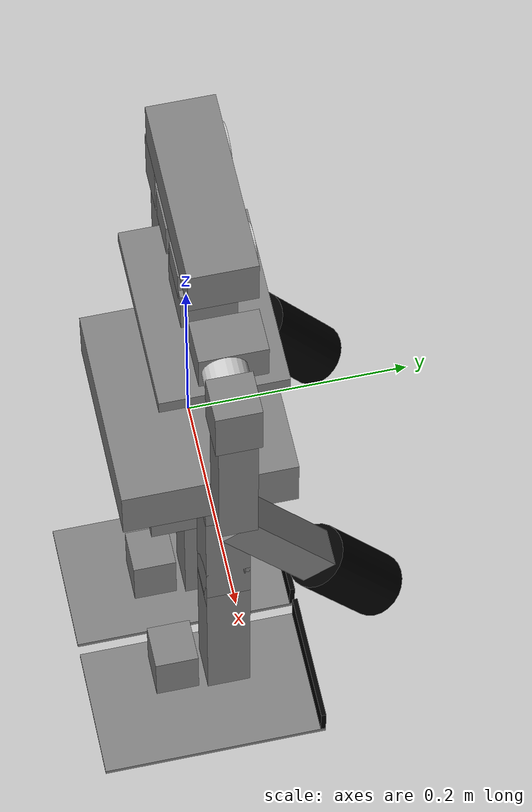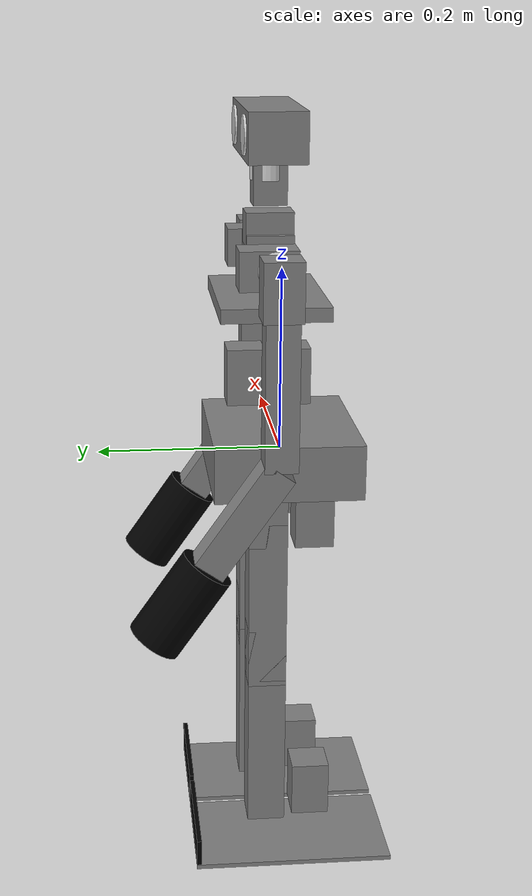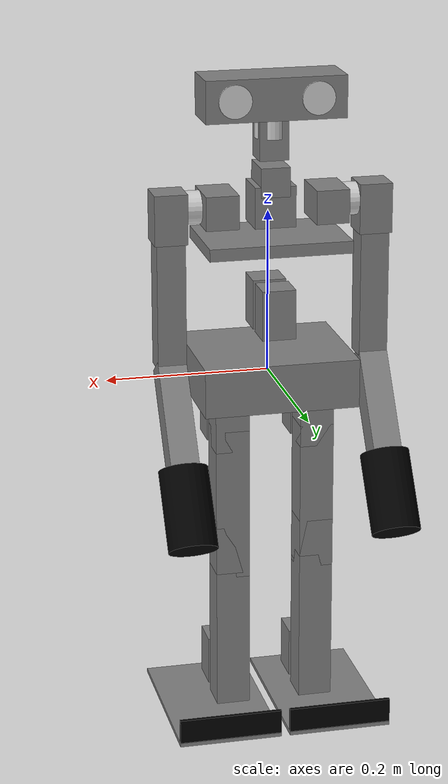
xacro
<?xml version="1.0" ?>
<robot xmlns:xacro="http://ros.org/wiki/xacro" name="tflow">

    <xacro:property name="dynamixel_mx28_x" value="0.0356"/>
    <xacro:property name="dynamixel_mx28_y" value="0.0355"/>
    <xacro:property name="dynamixel_mx28_z" value="0.0506"/>
    <xacro:property name="dynamixel_mx28_weight" value="0.072"/>

    <xacro:property name="dynamixel_mx64_x" value="0.0402"/>
    <xacro:property name="dynamixel_mx64_y" value="0.041"/>
    <xacro:property name="dynamixel_mx64_z" value="0.0611"/>
    <xacro:property name="dynamixel_mx64_weight" value="0.126"/>

    <xacro:property name="dynamixel_mx106_x" value="0.0402"/>
    <xacro:property name="dynamixel_mx106_y" value="0.046"/>
    <xacro:property name="dynamixel_mx106_z" value="0.0651"/>
    <xacro:property name="dynamixel_mx106_weight" value="0.153"/>

    <xacro:property name="kepalakepala_y" value="0.046"/>
    <xacro:property name="kepalakepala_z" value="0.0651"/>
    <xacro:property name="kepalakepala_weight" value="0.153"/>

    <xacro:macro name="kepalakepala" params="roll pitch yaw x y z">
        <visual>
            <geometry>
                <box size="${kepalakepala_x} ${kepalakepala_y} ${kepalakepala_z}"/>
            </geometry>
            <origin rpy="${roll} ${pitch} ${yaw}" xyz="${x} ${y} ${z}"/>
            <material name="silver">
                <color rgba="0.5 0.5 0.5 1"/>
            </material>
        </visual>
        <collision>
          <geometry>
            <box size="${kepalakepala_x} ${kepalakepala_y} ${kepalakepala_z}"/>
          </geometry>
          <origin rpy="${roll} ${pitch} ${yaw}" xyz="${x} ${y} ${z}"/>
        </collision>
        <inertial>
            <mass value="${kepalakepala_weight}"/>
            <inertia ixx="0.0" ixy="0.0" ixz="0.0" iyy="0.0" iyz="0.0" izz="0.0"/>
        </inertial>
    </xacro:macro>

    <xacro:macro name="dynamixelmx28" params="roll pitch yaw x y z">
        <visual>
            <geometry>
                <box size="${dynamixel_mx28_x} ${dynamixel_mx28_y} ${dynamixel_mx28_z}"/>
            </geometry>
            <origin rpy="${roll} ${pitch} ${yaw}" xyz="${x} ${y} ${z}"/>
            <material name="silver">
                <color rgba="0.5 0.5 0.5 1"/>
            </material>
        </visual>
        <collision>
          <geometry>
            <box size="${dynamixel_mx28_x} ${dynamixel_mx28_y} ${dynamixel_mx28_z}"/>
          </geometry>
          <origin rpy="${roll} ${pitch} ${yaw}" xyz="${x} ${y} ${z}"/>
        </collision>
        <inertial>
            <mass value="${dynamixel_mx28_weight}"/>
            <inertia ixx="0.0" ixy="0.0" ixz="0.0" iyy="0.0" iyz="0.0" izz="0.0"/>
        </inertial>
    </xacro:macro>

    <xacro:macro name="dynamixelmx64" params="roll pitch yaw x y z">
        <visual>
            <geometry>
                <box size="${dynamixel_mx64_x} ${dynamixel_mx64_y} ${dynamixel_mx64_z}"/>
            </geometry>
            <origin rpy="${roll} ${pitch} ${yaw}" xyz="${x} ${y} ${z}"/>
            <material name="silver">
                <color rgba="0.5 0.5 0.5 1"/>
            </material>
        </visual>
        <collision>
          <geometry>
            <box size="${dynamixel_mx64_x} ${dynamixel_mx64_y} ${dynamixel_mx64_z}"/>
          </geometry>
          <origin rpy="${roll} ${pitch} ${yaw}" xyz="${x} ${y} ${z}"/>
        </collision>
        <inertial>
            <mass value="${dynamixel_mx64_weight}"/>
            <inertia ixx="0.0" ixy="0.0" ixz="0.0" iyy="0.0" iyz="0.0" izz="0.0"/>
        </inertial>
    </xacro:macro>

    <xacro:macro name="dynamixelmx106" params="roll pitch yaw x y z">
        <visual>
            <geometry>
                <box size="${dynamixel_mx106_x} ${dynamixel_mx106_y} ${dynamixel_mx106_z}"/>
            </geometry>
            <origin rpy="${roll} ${pitch} ${yaw}" xyz="${x} ${y} ${z}"/>
            <material name="silver">
                <color rgba="0.3 0.3 0.3 1"/>
            </material>
        </visual>
        <collision>
          <geometry>
            <box size="${dynamixel_mx106_x} ${dynamixel_mx106_y} ${dynamixel_mx106_z}"/>
          </geometry>
          <origin rpy="${roll} ${pitch} ${yaw}" xyz="${x} ${y} ${z}"/>
        </collision>
        <inertial>
            <mass value="${dynamixel_mx106_weight}"/>
            <inertia ixx="0.0" ixy="0.0" ixz="0.0" iyy="0.0" iyz="0.0" izz="0.0"/>
        </inertial>
    </xacro:macro>

    <xacro:macro name="link_cylinder" params="le r roll pitch yaw x y z">
        <visual>
            <geometry>
                <cylinder length="${le}" radius="${r}"/>
            </geometry>
            <origin rpy="${roll} ${pitch} ${yaw}" xyz="${x} ${y} ${z}"/>
            <material name="white">
                <color rgba="0.8 0.8 0.8 1"/>
            </material>
        </visual>
        <collision>
          <geometry>
            <cylinder length="${le}" radius="${r}"/>
          </geometry>
          <origin rpy="${roll} ${pitch} ${yaw}" xyz="${x} ${y} ${z}"/>
        </collision>
        <inertial>
            <mass value="${le*r}"/>
            <inertia ixx="0.0" ixy="0.0" ixz="0.0" iyy="0.0" iyz="0.0" izz="0.0"/>
        </inertial>
    </xacro:macro>

    <xacro:macro name="link_box" params="bx by bz roll pitch yaw x y z">
        <visual>
            <geometry>
                <box size="${bx} ${by} ${bz}"/>
            </geometry>
            <origin rpy="${roll} ${pitch} ${yaw}" xyz="${x} ${y} ${z}"/>
            <material name="silver">
                <color rgba="0.5 0.5 0.5 1"/>
            </material>
        </visual>
        <collision>
          <geometry>
            <box size="${bx} ${by} ${bz}"/>
          </geometry>
          <origin rpy="${roll} ${pitch} ${yaw}" xyz="${x} ${y} ${z}"/>
        </collision>
        <inertial>
            <mass value="${bx*by*bz}"/>
            <inertia ixx="0.0" ixy="0.0" ixz="0.0" iyy="0.0" iyz="0.0" izz="0.0"/>
        </inertial>
    </xacro:macro>

     <xacro:macro name="link_box2" params="bx by bz roll pitch yaw x y z">
        <visual>
            <geometry>
                <box size="${bx} ${by} ${bz}"/>
            </geometry>
            <origin rpy="${roll} ${pitch} ${yaw}" xyz="${x} ${y} ${z}"/>
            <material name="white">
                <color rgba="0.8 0.8 0.8 1"/>
            </material>
        </visual>
        <collision>
          <geometry>
            <box size="${bx} ${by} ${bz}"/>
          </geometry>
          <origin rpy="${roll} ${pitch} ${yaw}" xyz="${x} ${y} ${z}"/>
        </collision>
        <inertial>
            <mass value="${bx*by*bz}"/>
            <inertia ixx="0.0" ixy="0.0" ixz="0.0" iyy="0.0" iyz="0.0" izz="0.0"/>
        </inertial>
    </xacro:macro>

    <xacro:macro name="telapak_tangan" params="le r roll pitch yaw x y z">
        <visual>
            <geometry>
                <cylinder length="${le}" radius="${r}"/>
            </geometry>
            <origin rpy="${roll} ${pitch} ${yaw}" xyz="${x} ${y} ${z}"/>
            <material name="black">
                <color rgba="0 0 0 1"/>
            </material>
        </visual>
        <collision>
          <geometry>
            <cylinder length="${le}" radius="${r}"/>
          </geometry>
          <origin rpy="${roll} ${pitch} ${yaw}" xyz="${x} ${y} ${z}"/>
        </collision>
        <inertial>
            <mass value="${le*r}"/>
            <inertia ixx="0.0" ixy="0.0" ixz="0.0" iyy="0.0" iyz="0.0" izz="0.0"/>
        </inertial>
    </xacro:macro>

    <link name="base_link">
        <visual>
            <geometry>
                <box size="0.19 0.16 0.06"/>
            </geometry>
            <origin rpy="0 0 0" xyz="0 0 0"/>
            <material name="silver">
                <color rgba="0.5 0.5 0.5 1"/>
            </material>
        </visual>
        <collision>
            <geometry>
                <box size="0.19 0.16 0.06"/>
            </geometry>
            <origin rpy="0 0 0" xyz="0 0 0"/>
            <material name="silver">
                <color rgba="0.5 0.5 0.5 1"/>
            </material>
        </collision>
        <inertial>
            <mass value="0.01"/>
            <inertia ixx="0.0" ixy="0.0" ixz="0.0" iyy="0.0" iyz="0.0" izz="0.0"/>
        </inertial>
    </link>

    <!-- PERUT -->
    <link name="servo_perut_pitch">
        <xacro:dynamixelmx64 roll="0.0" pitch="0.0" yaw = "1.57" x="0" y="0" z="0.025"/>
    </link>

    <link name="servo_perut_roll">
        <xacro:dynamixelmx64 roll="0.0" pitch="0.0" yaw = "1.57" x="0" y="0" z="0.025"/>
    </link>

    <link name="alas_badan_atas">
        <xacro:link_box bx="0.174" by="0.115" bz="0.015" roll="0.0" pitch="0.0" yaw ="0" x="0" y="-0.025" z="0.0725"/>
    </link>

    <link name="badan_atas">
        <xacro:link_box bx="0.05" by="0.05" bz="0.05" roll="0.0" pitch="0.0" yaw ="0" x="0" y="0.0" z="0.0"/>
    </link>

    <!-- TANGAN -->

    <link name="servo_lengan_kanan_roll">
        <xacro:dynamixelmx64 roll="1.57" pitch="0.0" yaw = "0.0" x="0" y="0.008" z="0.0"/>
    </link>

    <link name="servo_lengan_kiri_roll">
        <xacro:dynamixelmx64 roll="1.57" pitch="0.0" yaw = "0.0" x="0" y="0.008" z="0.0"/>
    </link>

    <link name="link_servo_lengan_kanan_roll">
        <xacro:link_cylinder le="0.04" r="0.02" roll="0.0" pitch="1.57" yaw ="0.0" x="0.02" y="0" z="0.00"/>
    </link>

    <link name="link_servo_lengan_kiri_roll">
        <xacro:link_cylinder le="0.04" r="0.02" roll="0.0" pitch="-1.57" yaw ="0.0" x="-0.02" y="0" z="0.00"/>
    </link>

    <link name="servo_lengan_kanan_pitch">
        <xacro:dynamixelmx64 roll="0.0" pitch="0.0" yaw = "0.0" x="0" y="0" z="-0.01"/>
    </link>

    <link name="servo_lengan_kiri_pitch">
        <xacro:dynamixelmx64 roll="0.0" pitch="0.0" yaw = "0.0" x="0" y="0" z="-0.01"/>
    </link>

    <link name="tangan_kanan_1">
        <xacro:link_box bx="0.035" by="0.035" bz="0.18" roll="0.0" pitch="0.0" yaw ="0" x="0" y="0.0" z="-0.09"/>
    </link>

    <link name="tangan_kiri_1">
        <xacro:link_box bx="0.035" by="0.035" bz="0.18" roll="0.0" pitch="0.0" yaw ="0" x="0" y="0.0" z="-0.09"/>
    </link>

    <link name="tangan_kanan_2">
        <xacro:link_box bx="0.035" by="0.035" bz="0.13" roll="0.0" pitch="0.0" yaw ="0" x="0" y="0.0" z="-0.065"/>
    </link>

    <link name="tangan_kiri_2">
        <xacro:link_box bx="0.035" by="0.035" bz="0.13" roll="0.0" pitch="0.0" yaw ="0" x="0" y="0.0" z="-0.065"/>
    </link>

    <link name="telapak_tangan_kanan">
        <xacro:telapak_tangan le="0.10" r="0.03" roll="0.0" pitch="0" yaw ="0" x="0" y="0" z="0.0"/>
    </link>

    <link name="telapak_tangan_kiri">
        <xacro:telapak_tangan le="0.10" r="0.03" roll="0.0" pitch="0" yaw ="0" x="0" y="0" z="0.0"/>
    </link>

    <!-- KEPALA -->
    <link name="servo_kepala_yaw">
        <xacro:dynamixelmx28 roll="1.57" pitch="1.57" yaw = "0.0" x="0" y="0.00" z="0.0"/>
    </link>

    <link name="servo_kepala_roll">
        <xacro:dynamixelmx28 roll="0.0" pitch="0.0" yaw = "1.57" x="0" y="0.00" z="0.0"/>
    </link>

    <link name="link_kepala">
        <xacro:link_cylinder le="0.04" r="0.02" roll="0.0" pitch="0.0" yaw ="0.0" x="0.00" y="0" z="0.02"/>
    </link>

    <link name="kepala">
        <xacro:link_box bx="0.17" by="0.06" bz="0.051" roll="0.0" pitch="0.0" yaw ="0" x="0" y="0.0" z="0.0"/>
    </link>

    <link name="kamera_kanan">
        <xacro:link_cylinder le="0.045" r="0.02" roll="1.57" pitch="0.0" yaw ="0.0" x="0.00" y="0.01" z="0.0"/>
    </link>

    <link name="kamera_kiri">
        <xacro:link_cylinder le="0.045" r="0.02" roll="1.57" pitch="0.0" yaw ="0.0" x="0.00" y="0.01" z="0.0"/>
    </link>

    <joint name="1.engkle_kanan_pitch" type="revolute">
        <parent link="servo_engkle_pitch_kanan"/>
        <child link="telapak_kaki_kanan"/>
        <origin xyz="0 0.025 0"/>
        <axis xyz="0 -1 0" />
        <limit effort="300" velocity="0.1" lower="-1.54" upper="1.54"/>
    </joint>

    <joint name="2.engkle_kiri_pitch" type="revolute">
        <parent link="servo_engkle_pitch_kiri"/>
        <child link="telapak_kaki_kiri"/>
        <origin xyz="0 0.025 0"/>
        <axis xyz="0 -1 0" />
        <limit effort="300" velocity="0.1" lower="-1.54" upper="1.54"/>
    </joint>

    <joint name="3.engkle_kanan_roll" type="revolute">
        <parent link="link_betis_kanan"/>
        <child link="servo_engkle_roll_kanan"/>
        <origin xyz="0 0.0 -0.15"/>
        <axis xyz="-1 0 0" />
        <limit effort="300" velocity="0.1" lower="-1.57" upper="1.57"/>
    </joint>

    <joint name="4.engkle_kiri_roll" type="revolute">
        <parent link="link_betis_kiri"/>
        <child link="servo_engkle_roll_kiri"/>
        <origin xyz="0 0.0 -0.15"/>
        <axis xyz="1 0 0" />
        <limit effort="300" velocity="0.1" lower="-1.57" upper="1.57"/>
    </joint>

    <joint name="5.lutut_kanan_roll" type="revolute">
        <parent link="servo_lutut_kanan"/>
        <child link="link_betis_kanan"/>
        <origin xyz="0 0.0 -0.022"/>
        <axis xyz="1 0 0" />
        <limit effort="300" velocity="0.1" lower="-3.14" upper="3.14"/>
    </joint>

    <joint name="6.lutut_kiri_roll" type="revolute">
        <parent link="servo_lutut_kiri"/>
        <child link="link_betis_kiri"/>
        <origin xyz="0 0.0 -0.022"/>
        <axis xyz="-1 0 0" />
        <limit effort="300" velocity="0.1" lower="-3.14" upper="3.14"/>
    </joint>

    <joint name="7.hip_kanan_roll" type="revolute">
        <parent link="servo_hip_roll_kanan"/>
        <child link="link_paha_kanan"/>
        <origin xyz="0 0.0 -0.01"/>
        <axis xyz="1 0 0" />
        <limit effort="300" velocity="0.1" lower="-1.57" upper="1.57"/>
    </joint>

    <joint name="8.hip_kiri_roll" type="revolute">
        <parent link="servo_hip_roll_kiri"/>
        <child link="link_paha_kiri"/>
        <origin xyz="0 0 -0.01"/>
        <axis xyz="-1 0 0" />
        <limit effort="300" velocity="0.1" lower="-1.57" upper="1.57"/>
    </joint>

    <joint name="9.hip_kanan_pitch" type="revolute">
        <parent link="servo_hip_pitch_kanan"/>
        <child link="servo_hip_roll_kanan"/>
        <origin xyz="0 0.02 0"/>
        <axis xyz="0 1 0" />
        <limit effort="300" velocity="0.1" lower="-1.57" upper="1.57"/>
    </joint>

    <joint name="10.hip_kiri_pitch" type="revolute">
        <parent link="servo_hip_pitch_kiri"/>
        <child link="servo_hip_roll_kiri"/>
        <origin xyz="0 0.02 0"/>
        <axis xyz="0 1 0" />
        <limit effort="300" velocity="0.1" lower="-1.57" upper="1.57"/>
    </joint>

    <joint name="11.hip_kanan_yaw" type="revolute">
        <parent link="servo_hip_yaw_kanan"/>
        <child link="servo_hip_pitch_kanan"/>
        <origin xyz="0 0 -0.060"/>
        <axis xyz="0 0 -1" />
        <limit effort="300" velocity="0.1" lower="-1.57" upper="1.57"/>
    </joint>

    <joint name="12.hip_kiri_yaw" type="revolute">
        <parent link="servo_hip_yaw_kiri"/>
        <child link="servo_hip_pitch_kiri"/>
        <origin xyz="0 0 -0.060"/>
        <axis xyz="0 0 -1" />
        <limit effort="300" velocity="0.1" lower="-1.57" upper="1.57"/>
    </joint>

   <joint name="13.joint_perut_pitch" type="revolute">
        <parent link="base_link"/>
        <child link="servo_perut_pitch"/>
        <origin rpy="0 0 0" xyz="0.00 -0.01 0.061"/>
        <limit effort="300" velocity="0.1" lower="-1.57" upper="1.57"/>
        <dynamics damping="50" friction="1"/>
        <axis xyz="0 1 0" />
    </joint>

   <joint name="14.joint_perut_roll" type="revolute">
        <parent link="servo_perut_roll"/>
        <child link="alas_badan_atas"/>
        <origin rpy="0 0 0" xyz="0.00 0.00 0.035"/>
        <limit effort="300" velocity="0.1" lower="-1.57" upper="1.57"/>
        <dynamics damping="50" friction="1"/>
        <axis xyz="1 0 0" />
    </joint>

   <joint name="15.tangan_kanan_roll" type="revolute">
        <parent link="servo_lengan_kanan_roll"/>
        <child link="link_servo_lengan_kanan_roll"/>
        <origin rpy="0 0 0" xyz="0.0 0.0 0.0"/>
        <limit effort="300" velocity="0.1" lower="-1.57" upper="1.57"/>
        <dynamics damping="50" friction="1"/>
        <axis xyz="1 0 0" />
    </joint>

   <joint name="16.tangan_kiri_roll" type="revolute">
        <parent link="servo_lengan_kiri_roll"/>
        <child link="link_servo_lengan_kiri_roll"/>
        <origin rpy="0 0 0" xyz="0.0 0.0 0.0"/>
        <limit effort="300" velocity="0.1" lower="-1.57" upper="1.57"/>
        <dynamics damping="50" friction="1"/>
        <axis xyz="-1 0 0" />
    </joint>

    <joint name="17.tangan_kanan_pitch" type="revolute">
        <parent link="link_servo_lengan_kanan_roll"/>
        <child link="servo_lengan_kanan_pitch"/>
        <origin rpy="0 0 0" xyz="0.058 0.0 0.0"/>
        <limit effort="300" velocity="0.1" lower="-1.57" upper="1.57"/>
        <dynamics damping="50" friction="1"/>
        <axis xyz="0 -1 0" />
    </joint>

    <joint name="18.tangan_kiri_pitch" type="revolute">
        <parent link="link_servo_lengan_kiri_roll"/>
        <child link="servo_lengan_kiri_pitch"/>
        <origin rpy="0 0 0" xyz="-0.058 0.0 0.0"/>
        <limit effort="300" velocity="0.1" lower="-1.57" upper="1.57"/>
        <dynamics damping="50" friction="1"/>
        <axis xyz="0 -1 0" />
    </joint>

   <joint name="19.kepala_yaw" type="revolute">
        <parent link="servo_kepala_yaw"/>
        <child link="servo_kepala_roll"/>
        <origin rpy="0 0 0" xyz="0.0 0.0 0.05"/>
        <limit effort="300" velocity="0.1" lower="-1.57" upper="1.57"/>
        <dynamics damping="50" friction="1"/>
        <axis xyz="0 0 1" />
    </joint>

    <joint name="20.kepala_roll" type="revolute">
        <parent link="servo_kepala_roll"/>
        <child link="link_kepala"/>
        <origin rpy="0 0 0" xyz="0.0 0.0 0.0"/>
        <limit effort="300" velocity="0.1" lower="-1.57" upper="1.57"/>
        <dynamics damping="50" friction="1"/>
        <axis xyz="1 0 0" />
    </joint>

    <!-- PERUT -->

    <joint name="servo_joint_perut_roll" type="fixed">
        <parent link="servo_perut_pitch"/>
        <child link="servo_perut_roll"/>
        <origin rpy="0 0 0" xyz="0.00 0.05 0.00"/>
        <limit effort="300" velocity="0.1" lower="-1.57" upper="1.57"/>
        <dynamics damping="50" friction="1"/>
        <axis xyz="1 0 0" />
    </joint>

    <joint name="badan_atas_fix" type="fixed">
        <parent link="alas_badan_atas"/>
        <child link="badan_atas"/>
        <origin rpy="0 0 0" xyz="0.00 -0.025 0.1175"/>
        <limit effort="300" velocity="0.1" lower="-1.57" upper="1.57"/>
        <dynamics damping="50" friction="1"/>
        <axis xyz="1 0 0" />
    </joint>

    <!-- TANGAN -->

    <joint name="badan_to_tangan_kanan" type="fixed">
        <parent link="badan_atas"/>
        <child link="servo_lengan_kanan_roll"/>
        <origin rpy="0 0 0" xyz="0.067 0.0 0.0"/>
        <limit effort="300" velocity="0.1" lower="-1.57" upper="1.57"/>
        <dynamics damping="50" friction="1"/>
        <axis xyz="1 0 0" />
    </joint>

    <joint name="badan_to_tangan_kiri" type="fixed">
        <parent link="badan_atas"/>
        <child link="servo_lengan_kiri_roll"/>
        <origin rpy="0 0 0" xyz="-0.067 0.0 0.0"/>
        <limit effort="300" velocity="0.1" lower="-1.57" upper="1.57"/>
        <dynamics damping="50" friction="1"/>
        <axis xyz="1 0 0" />
    </joint>

    <joint name="joint_tangan_kanan_1" type="fixed">
        <parent link="servo_lengan_kanan_pitch"/>
        <child link="tangan_kanan_1"/>
        <origin rpy="0 0 0" xyz="0.0 0.0 -0.015"/>
        <limit effort="300" velocity="0.1" lower="-1.57" upper="1.57"/>
        <dynamics damping="50" friction="1"/>
        <axis xyz="0 1 0" />
    </joint>

    <joint name="joint_tangan_kiri_1" type="fixed">
        <parent link="servo_lengan_kiri_pitch"/>
        <child link="tangan_kiri_1"/>
        <origin rpy="0 0 0" xyz="0.0 0.0 -0.015"/>
        <limit effort="300" velocity="0.1" lower="-1.57" upper="1.57"/>
        <dynamics damping="50" friction="1"/>
        <axis xyz="0 1 0" />
    </joint>

    <joint name="joint_tangan_kanan_2" type="fixed">
        <parent link="tangan_kanan_1"/>
        <child link="tangan_kanan_2"/>
        <origin rpy="0.61 0 0" xyz="0.0 0.0 -0.18"/>
        <limit effort="300" velocity="0.1" lower="-1.57" upper="1.57"/>
        <dynamics damping="50" friction="1"/>
        <axis xyz="0 1 0" />
    </joint>

    <joint name="joint_tangan_kiri_2" type="fixed">
        <parent link="tangan_kiri_1"/>
        <child link="tangan_kiri_2"/>
        <origin rpy="0.61 0 0" xyz="0.0 0.0 -0.18"/>
        <limit effort="300" velocity="0.1" lower="-1.57" upper="1.57"/>
        <dynamics damping="50" friction="1"/>
        <axis xyz="0 1 0" />
    </joint>

    <joint name="tangan_kanan_eof" type="fixed">
        <parent link="tangan_kanan_2"/>
        <child link="telapak_tangan_kanan"/>
        <origin rpy="0.0 0 0" xyz="0.0 0.0 ${-0.13 - 0.05}"/>
        <limit effort="300" velocity="0.1" lower="-1.57" upper="1.57"/>
        <dynamics damping="50" friction="1"/>
        <axis xyz="0 1 0" />
    </joint>

    <joint name="tangan_kiri_eof" type="fixed">
        <parent link="tangan_kiri_2"/>
        <child link="telapak_tangan_kiri"/>
        <origin rpy="0.0 0 0" xyz="0.0 0.0 ${-0.13 - 0.05}"/>
        <limit effort="300" velocity="0.1" lower="-1.57" upper="1.57"/>
        <dynamics damping="50" friction="1"/>
        <axis xyz="0 1 0" />
    </joint>

    <!-- KEPALA -->

    <joint name="badan_to_tangan_kepala" type="fixed">
        <parent link="badan_atas"/>
        <child link="servo_kepala_yaw"/>
        <origin rpy="0 0 0" xyz="0.0 0.0 0.03"/>
        <limit effort="300" velocity="0.1" lower="-1.57" upper="1.57"/>
        <dynamics damping="50" friction="1"/>
        <axis xyz="1 0 0" />
    </joint>

    <joint name="kepala_eof" type="fixed">
        <parent link="link_kepala"/>
        <child link="kepala"/>
        <origin rpy="0 0 0" xyz="0.0 0.0 0.05"/>
        <limit effort="300" velocity="0.1" lower="-1.57" upper="1.57"/>
        <dynamics damping="50" friction="1"/>
        <axis xyz="0 0 1" />
    </joint>

    <joint name="kamera_kanan_eof" type="fixed">
        <parent link="kepala"/>
        <child link="kamera_kanan"/>
        <origin rpy="0 0 0" xyz="0.05 0.0 0.00"/>
        <limit effort="300" velocity="0.1" lower="-1.57" upper="1.57"/>
        <dynamics damping="50" friction="1"/>
        <axis xyz="0 0 1" />
    </joint>

    <joint name="kamera_kiri_eof" type="fixed">
        <parent link="kepala"/>
        <child link="kamera_kiri"/>
        <origin rpy="0 0 0" xyz="-0.05 0.0 0.00"/>
        <limit effort="300" velocity="0.1" lower="-1.57" upper="1.57"/>
        <dynamics damping="50" friction="1"/>
        <axis xyz="0 0 1" />
    </joint>

    <!-- Kaki Kanan -->

    <joint name="base_to_hip_kanan" type="fixed">
        <parent link="base_link"/>
        <child link="servo_hip_yaw_kanan"/>
        <origin xyz="0.053 0 0."/>
        <axis xyz="0 0 1" />
    </joint>

    <link name="servo_hip_yaw_kanan">
      <visual>
        <geometry>
          <box size="0.042 0.061 0.042"/>
        </geometry>
        <origin rpy="0 0 0" xyz="0 0 0"/>
        <material name="silver">
          <color rgba="0.5 0.5 0.5 1"/>
        </material>
      </visual>
      <collision>
        <geometry>
          <box size="0.042 0.042 0.042"/>
        </geometry>
        <origin rpy="0 0 0" xyz="0 0 0"/>
      </collision>
      <inertial>
          <mass value="1"/>
          <inertia ixx="1.0" ixy="0.0" ixz="0.0" iyy="1.0" iyz="0.0" izz="1.0"/>
      </inertial>
    </link>

    <link name="servo_hip_pitch_kanan">
      <visual>
        <geometry>
          <box size="0.042 0.042 0.061"/>
        </geometry>
        <origin rpy="0 0 0" xyz="0 -0.03 0"/>
        <material name="silver">
          <color rgba="0.5 0.5 0.5 1"/>
        </material>
      </visual>
      <collision>
        <geometry>
          <box size="0.042 0.042 0.042"/>
        </geometry>
        <origin rpy="0 0 0" xyz="0 0 0"/>
      </collision>
      <inertial>
          <mass value="1"/>
          <inertia ixx="1.0" ixy="0.0" ixz="0.0" iyy="1.0" iyz="0.0" izz="1.0"/>
      </inertial>
    </link>

    <link name="servo_hip_roll_kanan">
      <visual>
        <geometry>
          <box size="0.042 0.042 0.061"/>
        </geometry>
        <origin rpy="0 0 0" xyz="0 0 0"/>
        <material name="silver">
          <color rgba="0.5 0.5 0.5 1"/>
        </material>
      </visual>
      <collision>
        <geometry>
          <box size="0.042 0.042 0.042"/>
        </geometry>
        <origin rpy="0 0 0" xyz="0 0 0"/>
      </collision>
      <inertial>
          <mass value="1"/>
          <inertia ixx="1.0" ixy="0.0" ixz="0.0" iyy="1.0" iyz="0.0" izz="1.0"/>
      </inertial>
    </link>

    <link name="link_paha_kanan">
      <visual>
        <geometry>
          <box size="0.042 0.042 0.192"/>
        </geometry>
        <origin rpy="0 0 0" xyz="0 0 -0.09"/>
        <material name="silver">
          <color rgba="0.5 0.5 0.5 1"/>
        </material>
      </visual>
      <collision>
        <geometry>
          <box size="0.042 0.042 0.192"/>
        </geometry>
        <origin rpy="0 0 0" xyz="0 0 -0.09"/>
      </collision>
      <inertial>
          <mass value="1"/>
          <inertia ixx="1.0" ixy="0.0" ixz="0.0" iyy="1.0" iyz="0.0" izz="1.0"/>
      </inertial>
    </link>

    <joint name="link_servo_lutut_kanan" type="fixed">
        <parent link="link_paha_kanan"/>
        <child link="servo_lutut_kanan"/>
        <origin xyz="0 0.0 -0.15 "/>
        <axis xyz="1 0 0" />
        <limit effort="300" velocity="0.1" lower="-1.57" upper="1.57"/>
    </joint>

    <link name="servo_lutut_kanan">
      <visual>
        <geometry>
          <box size="0.042 0.042 0.061"/>
        </geometry>
        <origin rpy="0 0 0" xyz="0 0 0"/>
        <material name="silver">
          <color rgba="0.5 0.5 0.5 1"/>
        </material>
      </visual>
      <collision>
        <geometry>
          <box size="0.042 0.042 0.061"/>
        </geometry>
        <origin rpy="0 0 0" xyz="0 0 0"/>
      </collision>
      <inertial>
          <mass value="1"/>
          <inertia ixx="1.0" ixy="0.0" ixz="0.0" iyy="1.0" iyz="0.0" izz="1.0"/>
      </inertial>
    </link>

    <link name="link_betis_kanan">
      <visual>
        <geometry>
          <box size="0.042 0.042 0.192"/>
        </geometry>
        <origin rpy="0 0 0" xyz="0 0 -0.09"/>
        <material name="silver">
          <color rgba="0.5 0.5 0.5 11"/>
        </material>
      </visual>
      <collision>
        <geometry>
          <box size="0.042 0.042 0.192"/>
        </geometry>
        <origin rpy="0 0 0" xyz="0 0 -0.09"/>
      </collision>
      <inertial>
          <mass value="1"/>
          <inertia ixx="1.0" ixy="0.0" ixz="0.0" iyy="1.0" iyz="0.0" izz="1.0"/>
      </inertial>
    </link>

    <link name="servo_engkle_roll_kanan">
      <visual>
        <geometry>
          <box size="0 0 0"/>
        </geometry>
        <origin rpy="0 0 0" xyz="0 0 0"/>
        <material name="silver">
          <color rgba="0.5 0.5 0.5 1"/>
        </material>
      </visual>
      <collision>
        <geometry>
          <box size="0 0 0"/>
        </geometry>
        <origin rpy="0 0 0" xyz="0 0 0"/>
      </collision>
      <inertial>
          <mass value="1"/>
          <inertia ixx="1.0" ixy="0.0" ixz="0.0" iyy="1.0" iyz="0.0" izz="1.0"/>
      </inertial>
    </link>

    <joint name="link_servo_engkle_kanan" type="fixed">
        <parent link="servo_engkle_roll_kanan"/>
        <child link="servo_engkle_pitch_kanan"/>
        <origin xyz="0 -0.051 0"/>
        <axis xyz="1 0 0" />
        <limit effort="300" velocity="0.1" lower="-3.14" upper="3.14"/>
    </joint>

    <link name="servo_engkle_pitch_kanan">
      <visual>
        <geometry>
          <box size="0.042 0.042 0.061"/>
        </geometry>
        <origin rpy="0 0 0" xyz="0 0 0"/>
        <material name="silver">
          <color rgba="0.5 0.5 0.5 1"/>
        </material>
      </visual>
      <collision>
        <geometry>
          <box size="0.042 0.042 0.061"/>
        </geometry>
        <origin rpy="0 0 0" xyz="0 0 0"/>
      </collision>
      <inertial>
          <mass value="1"/>
          <inertia ixx="1.0" ixy="0.0" ixz="0.0" iyy="1.0" iyz="0.0" izz="1.0"/>
      </inertial>
    </link>

    <link name="telapak_kaki_kanan">
      <visual>
        <geometry>
          <box size="0.129 0.219 0.005"/>
        </geometry>
        <origin rpy="0 0 0" xyz="0.0170 0 -0.056"/>
        <material name="silver">
          <color rgba="0.5 0.5 0.5 1"/>
        </material>
      </visual>
      <collision>
        <geometry>
          <box size="0.129 0.219 0.005"/>
        </geometry>
        <origin rpy="0 0 0" xyz="0.0170 0 -0.056"/>
      </collision>
      <inertial>
          <mass value="1"/>
          <inertia ixx="1.0" ixy="0.0" ixz="0.0" iyy="1.0" iyz="0.0" izz="1.0"/>
      </inertial>
    </link>

    <joint name="kaki_kanan_eof" type="fixed">
        <parent link="telapak_kaki_kanan"/>
        <child link="telapak_kaki_kanan_eof"/>
        <origin xyz="0 0.0 -0.055"/>
        <axis xyz="0 1 0" />
        <limit effort="300" velocity="0.1" lower="-3.14" upper="3.14"/>
    </joint>

    <link name="telapak_kaki_kanan_eof">
      <visual>
        <geometry>
          <box size="0.129 0.005 0.030"/>
        </geometry>
        <origin rpy="0 0 0" xyz="0.0170 0.107 0.017"/>
            <material name="black">
                <color rgba="0 0 0 1"/>
            </material>
      </visual>
      <collision>
        <geometry>
          <box size="0.129 0.005 0.030"/>
        </geometry>
         <origin rpy="0 0 0" xyz="0.0170 0.107 0.017"/>
      </collision>
      <inertial>
          <mass value="1"/>
          <inertia ixx="1.0" ixy="0.0" ixz="0.0" iyy="1.0" iyz="0.0" izz="1.0"/>
      </inertial>
    </link>

<!--Kaki kiri-->

    <joint name="base_to_hip_kiri" type="fixed">
        <parent link="base_link"/>
        <child link="servo_hip_yaw_kiri"/>
        <origin xyz="-0.053 0 0"/>
        <axis xyz="0 0 1" />
    </joint>

    <link name="servo_hip_yaw_kiri">
      <visual>
        <geometry>
          <box size="0.042 0.061 0.042"/>
        </geometry>
        <origin rpy="0 0 0" xyz="0 0 0"/>
        <material name="silver">
          <color rgba="0.5 0.5 0.5 1"/>
        </material>
      </visual>
      <collision>
        <geometry>
          <box size="0.042 0.042 0.042"/>
        </geometry>
        <origin rpy="0 0 0" xyz="0 0 0"/>
      </collision>
      <inertial>
          <mass value="1"/>
          <inertia ixx="1.0" ixy="0.0" ixz="0.0" iyy="1.0" iyz="0.0" izz="1.0"/>
      </inertial>
    </link>

    <link name="servo_hip_pitch_kiri">
      <visual>
        <geometry>
          <box size="0.042 0.042 0.061"/>
        </geometry>
        <origin rpy="0 0 0" xyz="0 -0.03 0"/>
        <material name="silver">
          <color rgba="0.5 0.5 0.5 1"/>
        </material>
      </visual>
      <collision>
        <geometry>
          <box size="0.042 0.042 0.042"/>
        </geometry>
        <origin rpy="0 0 0" xyz="0 0 0"/>
      </collision>
      <inertial>
          <mass value="1"/>
          <inertia ixx="1.0" ixy="0.0" ixz="0.0" iyy="1.0" iyz="0.0" izz="1.0"/>
      </inertial>
    </link>

    <link name="servo_hip_roll_kiri">
      <visual>
        <geometry>
          <box size="0.042 0.042 0.061"/>
        </geometry>
        <origin rpy="0 0 0" xyz="0 0 0"/>
        <material name="silver">
          <color rgba="0.5 0.5 0.5 1"/>
        </material>
      </visual>
      <collision>
        <geometry>
          <box size="0.042 0.042 0.042"/>
        </geometry>
        <origin rpy="0 0 0" xyz="0 0 0"/>
      </collision>
      <inertial>
          <mass value="1"/>
          <inertia ixx="1.0" ixy="0.0" ixz="0.0" iyy="1.0" iyz="0.0" izz="1.0"/>
      </inertial>
    </link>

    <link name="link_paha_kiri">
      <visual>
        <geometry>
          <box size="0.042 0.042 0.192"/>
        </geometry>
        <origin rpy="0 0 0" xyz="0 0 -0.09"/>
        <material name="silver">
          <color rgba="0.5 0.5 0.5 1"/>
        </material>
      </visual>
      <collision>
        <geometry>
          <box size="0.042 0.042 0.192"/>
        </geometry>
        <origin rpy="0 0 0" xyz="0 0 -0.09"/>
      </collision>
      <inertial>
          <mass value="1"/>
          <inertia ixx="1.0" ixy="0.0" ixz="0.0" iyy="1.0" iyz="0.0" izz="1.0"/>
      </inertial>
    </link>

    <joint name="link_servo_lutut_kiri" type="fixed">
        <parent link="link_paha_kiri"/>
        <child link="servo_lutut_kiri"/>
        <origin xyz="0 0.0 -0.15"/>
        <axis xyz="1 0 0" />
        <limit effort="300" velocity="0.1" lower="-1.57" upper="1.57"/>
    </joint>

    <link name="servo_lutut_kiri">
      <visual>
        <geometry>
          <box size="0.042 0.042 0.061"/>
        </geometry>
        <origin rpy="0 0 0" xyz="0 0 0"/>
        <material name="silver">
          <color rgba="0.5 0.5 0.5 1"/>
        </material>
      </visual>
      <collision>
        <geometry>
          <box size="0.042 0.042 0.061"/>
        </geometry>
        <origin rpy="0 0 0" xyz="0 0 0"/>
      </collision>
      <inertial>
          <mass value="1"/>
          <inertia ixx="1.0" ixy="0.0" ixz="0.0" iyy="1.0" iyz="0.0" izz="1.0"/>
      </inertial>
    </link>

    <link name="link_betis_kiri">
      <visual>
        <geometry>
          <box size="0.042 0.042 0.192"/>
        </geometry>
        <origin rpy="0 0 0" xyz="0 0 -0.09"/>
        <material name="silver">
          <color rgba="0.5 0.5 0.5 11"/>
        </material>
      </visual>
      <collision>
        <geometry>
          <box size="0.042 0.042 0.192"/>
        </geometry>
        <origin rpy="0 0 0" xyz="0 0 -0.09"/>
      </collision>
      <inertial>
          <mass value="1"/>
          <inertia ixx="1.0" ixy="0.0" ixz="0.0" iyy="1.0" iyz="0.0" izz="1.0"/>
      </inertial>
    </link>

    <link name="servo_engkle_roll_kiri">
      <visual>
        <geometry>
          <box size="0 0 0"/>
        </geometry>
        <origin rpy="0 0 0" xyz="0 0 0"/>
        <material name="silver">
          <color rgba="0.5 0.5 0.5 1"/>
        </material>
      </visual>
      <collision>
        <geometry>
          <box size="0 0 0"/>
        </geometry>
        <origin rpy="0 0 0" xyz="0 0 0"/>
      </collision>
      <inertial>
          <mass value="1"/>
          <inertia ixx="1.0" ixy="0.0" ixz="0.0" iyy="1.0" iyz="0.0" izz="1.0"/>
      </inertial>
    </link>

    <joint name="link_servo_engkle_kiri" type="fixed">
        <parent link="servo_engkle_roll_kiri"/>
        <child link="servo_engkle_pitch_kiri"/>
        <origin xyz="0 -0.051 0"/>
        <axis xyz="1 0 0" />
        <limit effort="300" velocity="0.1" lower="-3.14" upper="3.14"/>
    </joint>

    <link name="servo_engkle_pitch_kiri">
      <visual>
        <geometry>
          <box size="0.042 0.042 0.061"/>
        </geometry>
        <origin rpy="0 0 0" xyz="0 0 0"/>
        <material name="silver">
          <color rgba="0.5 0.5 0.5 1"/>
        </material>
      </visual>
      <collision>
        <geometry>
          <box size="0.042 0.042 0.061"/>
        </geometry>
        <origin rpy="0 0 0" xyz="0 0 0"/>
      </collision>
      <inertial>
          <mass value="1"/>
          <inertia ixx="1.0" ixy="0.0" ixz="0.0" iyy="1.0" iyz="0.0" izz="1.0"/>
      </inertial>
    </link>

    <link name="telapak_kaki_kiri">
      <visual>
        <geometry>
          <box size="0.129 0.219 0.005"/>
        </geometry>
        <origin rpy="0 0 0" xyz="-0.0170 0 -0.056"/>
        <material name="silver">
          <color rgba="0.5 0.5 0.5 1"/>
        </material>
      </visual>
      <collision>
        <geometry>
          <box size="0.129 0.219 0.005"/>
        </geometry>
        <origin rpy="0 0 0" xyz="-0.0170 0 -0.056"/>
      </collision>
      <inertial>
          <mass value="1"/>
          <inertia ixx="1.0" ixy="0.0" ixz="0.0" iyy="1.0" iyz="0.0" izz="1.0"/>
      </inertial>
    </link>

    <joint name="kaki_kiri_eof" type="fixed">
        <parent link="telapak_kaki_kiri"/>
        <child link="telapak_kaki_kiri_eof"/>
        <origin xyz="0 0.0 -0.055"/>
        <axis xyz="0 1 0" />
        <limit effort="300" velocity="0.1" lower="-3.14" upper="3.14"/>
    </joint>

    <link name="telapak_kaki_kiri_eof">
      <visual>
        <geometry>
          <box size="0.129 0.005 0.030"/>
        </geometry>
        <origin rpy="0 0 0" xyz="-0.0170 0.107 0.017"/>
            <material name="black">
                <color rgba="0 0 0 1"/>
            </material>
      </visual>
      <collision>
        <geometry>
          <box size="0.129 0.005 0.030"/>
        </geometry>
        <origin rpy="0 0 0" xyz="-0.0170 0.107 0.017"/>
      </collision>
      <inertial>
          <mass value="1"/>
          <inertia ixx="1.0" ixy="0.0" ixz="0.0" iyy="1.0" iyz="0.0" izz="1.0"/>
      </inertial>
    </link>

</robot>
